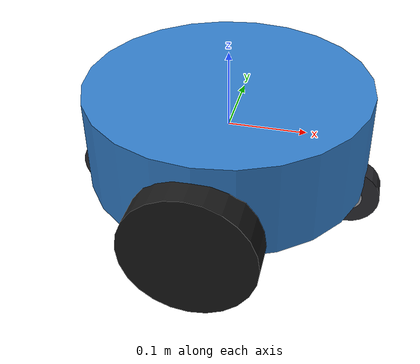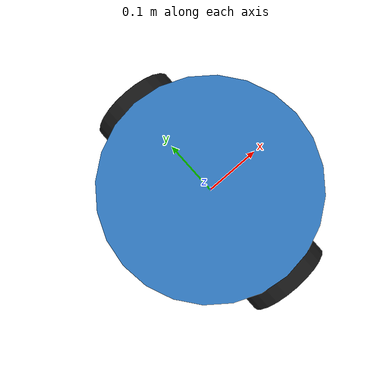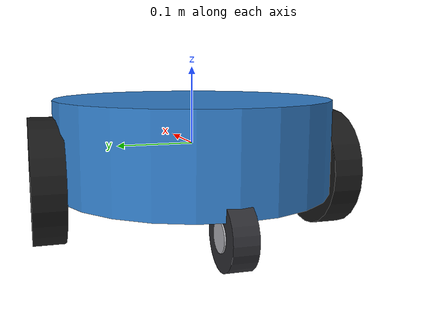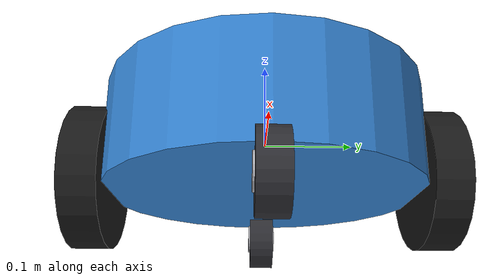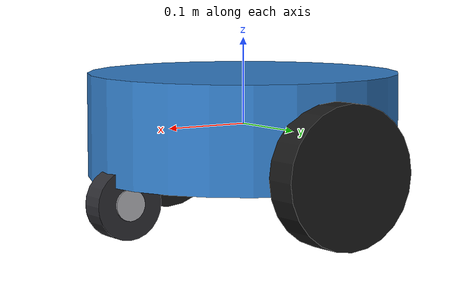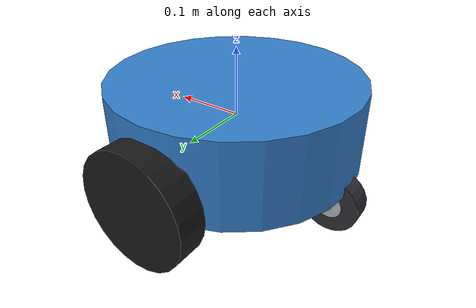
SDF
<?xml version="1.0" ?>
<sdf version="1.6">

  <model name="robot">

    <!-- 본체 -->
    <link name="base_link">
      <inertial>
        <mass>8.0</mass>
        <inertia>
          <ixx>0.2</ixx><ixy>0</ixy><ixz>0</ixz>
          <iyy>0.2</iyy><iyz>0</iyz><izz>0.3</izz>
        </inertia>
      </inertial>

      <collision name="col">
        <geometry>
          <cylinder>
            <radius>0.18</radius>
            <length>0.12</length>
          </cylinder>
        </geometry>
      </collision>

      <visual name="vis">
        <geometry>
          <cylinder>
            <radius>0.18</radius>
            <length>0.12</length>
          </cylinder>
        </geometry>
        <material>
          <ambient>0.2 0.5 0.8 1</ambient>
          <diffuse>0.2 0.5 0.8 1</diffuse>
        </material>
      </visual>

      <!-- 2D LiDAR — SLAMTEC RPLIDAR C1 spec -->
      <sensor name="lidar" type="ray">
        <pose>0 0 0.1 0 0 0</pose>
        <update_rate>10</update_rate>
        <always_on>true</always_on>
        <visualize>false</visualize>
        <ray>
          <scan>
            <horizontal>
              <samples>500</samples>
              <resolution>1</resolution>
              <min_angle>-3.14159</min_angle>
              <max_angle>3.14159</max_angle>
            </horizontal>
          </scan>
          <range>
            <min>0.05</min>
            <max>12.0</max>
            <resolution>0.015</resolution>
          </range>
          <noise>
            <type>gaussian</type>
            <mean>0.0</mean>
            <stddev>0.03</stddev>
          </noise>
        </ray>
        <plugin name="lidar_ros" filename="libgazebo_ros_ray_sensor.so">
          <ros>
            <namespace>/</namespace>
            <remapping>~/out:=scan</remapping>
          </ros>
          <output_type>sensor_msgs/LaserScan</output_type>
          <frame_name>base_link</frame_name>
        </plugin>
      </sensor>

      <!-- 전방 RGB 카메라 -->
      <sensor name="camera" type="camera">
        <pose>0.16 0 0.50 0 0 0</pose>
        <update_rate>10</update_rate>
        <always_on>true</always_on>
        <visualize>false</visualize>
        <camera>
          <horizontal_fov>1.287</horizontal_fov>
          <image>
            <width>640</width>
            <height>480</height>
            <format>R8G8B8</format>
          </image>
          <clip>
            <near>0.05</near>
            <far>30.0</far>
          </clip>
          <noise>
            <type>gaussian</type>
            <mean>0.0</mean>
            <stddev>0.005</stddev>
          </noise>
        </camera>
        <plugin name="camera_ros" filename="libgazebo_ros_camera.so">
          <ros>
            <namespace>/</namespace>
          </ros>
          <frame_name>camera_optical_frame</frame_name>
        </plugin>
      </sensor>
    </link>

    <!-- 왼쪽 바퀴 -->
    <link name="left_wheel">
      <pose>0 0.19 -0.04 -1.5708 0 0</pose>
      <inertial>
        <mass>0.5</mass>
        <inertia>
          <ixx>0.001</ixx><ixy>0</ixy><ixz>0</ixz>
          <iyy>0.001</iyy><iyz>0</iyz><izz>0.001</izz>
        </inertia>
      </inertial>
      <collision name="col">
        <geometry>
          <cylinder>
            <radius>0.08</radius>
            <length>0.04</length>
          </cylinder>
        </geometry>
        <surface>
          <friction>
            <ode>
              <mu>1.0</mu>
              <mu2>0.8</mu2>
            </ode>
          </friction>
        </surface>
      </collision>
      <visual name="vis">
        <geometry>
          <cylinder>
            <radius>0.08</radius>
            <length>0.04</length>
          </cylinder>
        </geometry>
        <material>
          <ambient>0.1 0.1 0.1 1</ambient>
          <diffuse>0.1 0.1 0.1 1</diffuse>
        </material>
      </visual>
    </link>

    <joint name="left_wheel_joint" type="revolute">
      <parent>base_link</parent>
      <child>left_wheel</child>
      <axis>
        <xyz>0 0 1</xyz>
        <limit>
          <lower>-1e16</lower>
          <upper>1e16</upper>
        </limit>
      </axis>
    </joint>

    <!-- 오른쪽 바퀴 -->
    <link name="right_wheel">
      <pose>0 -0.19 -0.04 -1.5708 0 0</pose>
      <inertial>
        <mass>0.5</mass>
        <inertia>
          <ixx>0.001</ixx><ixy>0</ixy><ixz>0</ixz>
          <iyy>0.001</iyy><iyz>0</iyz><izz>0.001</izz>
        </inertia>
      </inertial>
      <collision name="col">
        <geometry>
          <cylinder>
            <radius>0.08</radius>
            <length>0.04</length>
          </cylinder>
        </geometry>
        <surface>
          <friction>
            <ode>
              <mu>1.0</mu>
              <mu2>0.8</mu2>
            </ode>
          </friction>
        </surface>
      </collision>
      <visual name="vis">
        <geometry>
          <cylinder>
            <radius>0.08</radius>
            <length>0.04</length>
          </cylinder>
        </geometry>
        <material>
          <ambient>0.1 0.1 0.1 1</ambient>
          <diffuse>0.1 0.1 0.1 1</diffuse>
        </material>
      </visual>
    </link>

    <joint name="right_wheel_joint" type="revolute">
      <parent>base_link</parent>
      <child>right_wheel</child>
      <axis>
        <xyz>0 0 1</xyz>
        <limit>
          <lower>-1e16</lower>
          <upper>1e16</upper>
        </limit>
      </axis>
    </joint>

    <!-- 앞 보조 캐스터 -->
    <link name="front_caster">
      <pose>0.16 0 -0.08 -1.5708 0 0</pose>
      <inertial>
        <mass>0.10</mass>
        <inertia>
          <ixx>0.0001</ixx><ixy>0</ixy><ixz>0</ixz>
          <iyy>0.0001</iyy><iyz>0</iyz><izz>0.0001</izz>
        </inertia>
      </inertial>
      <collision name="col">
        <geometry>
          <sphere>
            <radius>0.04</radius>
          </sphere>
        </geometry>
        <surface>
          <friction>
            <ode>
              <mu>0.1</mu>
              <mu2>0.1</mu2>
            </ode>
          </friction>
        </surface>
      </collision>
      <visual name="wheel_vis">
        <geometry>
          <cylinder>
            <radius>0.04</radius>
            <length>0.03</length>
          </cylinder>
        </geometry>
        <material>
          <ambient>0.18 0.18 0.20 1</ambient>
          <diffuse>0.18 0.18 0.20 1</diffuse>
          <specular>0.4 0.4 0.4 1</specular>
        </material>
      </visual>
      <visual name="hub_vis">
        <pose>0 0 0 0 0 0</pose>
        <geometry>
          <cylinder>
            <radius>0.018</radius>
            <length>0.034</length>
          </cylinder>
        </geometry>
        <material>
          <ambient>0.70 0.70 0.72 1</ambient>
          <diffuse>0.70 0.70 0.72 1</diffuse>
          <specular>0.8 0.8 0.8 1</specular>
        </material>
      </visual>
    </link>

    <joint name="front_caster_joint" type="fixed">
      <parent>base_link</parent>
      <child>front_caster</child>
    </joint>

    <!-- 뒤 보조 캐스터 -->
    <link name="rear_caster">
      <pose>-0.16 0 -0.08 -1.5708 0 0</pose>
      <inertial>
        <mass>0.10</mass>
        <inertia>
          <ixx>0.0001</ixx><ixy>0</ixy><ixz>0</ixz>
          <iyy>0.0001</iyy><iyz>0</iyz><izz>0.0001</izz>
        </inertia>
      </inertial>
      <collision name="col">
        <geometry>
          <sphere>
            <radius>0.04</radius>
          </sphere>
        </geometry>
        <surface>
          <friction>
            <ode>
              <mu>0.1</mu>
              <mu2>0.1</mu2>
            </ode>
          </friction>
        </surface>
      </collision>
      <visual name="wheel_vis">
        <geometry>
          <cylinder>
            <radius>0.04</radius>
            <length>0.03</length>
          </cylinder>
        </geometry>
        <material>
          <ambient>0.18 0.18 0.20 1</ambient>
          <diffuse>0.18 0.18 0.20 1</diffuse>
          <specular>0.4 0.4 0.4 1</specular>
        </material>
      </visual>
      <visual name="hub_vis">
        <pose>0 0 0 0 0 0</pose>
        <geometry>
          <cylinder>
            <radius>0.018</radius>
            <length>0.034</length>
          </cylinder>
        </geometry>
        <material>
          <ambient>0.70 0.70 0.72 1</ambient>
          <diffuse>0.70 0.70 0.72 1</diffuse>
          <specular>0.8 0.8 0.8 1</specular>
        </material>
      </visual>
    </link>

    <joint name="rear_caster_joint" type="fixed">
      <parent>base_link</parent>
      <child>rear_caster</child>
    </joint>

    <!-- Diff Drive (Gazebo Classic 11 + ROS 2) -->
    <plugin name="diff_drive" filename="libgazebo_ros_diff_drive.so">
      <ros>
        <namespace>/</namespace>
      </ros>

      <update_rate>50</update_rate>

      <left_joint>left_wheel_joint</left_joint>
      <right_joint>right_wheel_joint</right_joint>

      <wheel_separation>0.38</wheel_separation>
      <wheel_diameter>0.16</wheel_diameter>

      <max_wheel_torque>20</max_wheel_torque>
      <max_wheel_acceleration>5.0</max_wheel_acceleration>

      <command_topic>cmd_vel</command_topic>
      <publish_odom>true</publish_odom>
      <publish_odom_tf>true</publish_odom_tf>
      <publish_wheel_tf>false</publish_wheel_tf>

      <odometry_topic>odom</odometry_topic>
      <odometry_frame>odom</odometry_frame>
      <robot_base_frame>base_link</robot_base_frame>
    </plugin>

    <!-- Joint state publisher (for wheel TF) -->
    <plugin name="joint_state_publisher" filename="libgazebo_ros_joint_state_publisher.so">
      <ros>
        <namespace>/</namespace>
        <remapping>~/out:=joint_states</remapping>
      </ros>
      <update_rate>30</update_rate>
      <joint_name>left_wheel_joint</joint_name>
      <joint_name>right_wheel_joint</joint_name>
    </plugin>
  </model>
</sdf>
